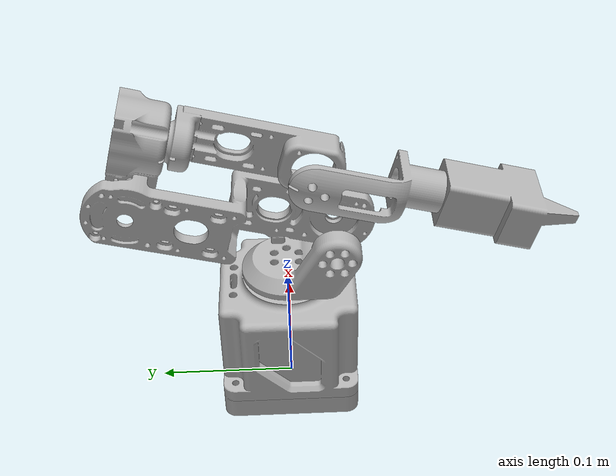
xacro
<?xml version="1.0" ?>
<robot name="Dummy_ros2_gripper" xmlns:xacro="http://www.ros.org/wiki/xacro">

<xacro:include filename="$(find Dummy_ros2_gripper_description)/urdf/materials.xacro" />
<xacro:include filename="$(find Dummy_ros2_gripper_description)/urdf/Dummy_ros2_gripper.ros2control" />
<xacro:include filename="$(find Dummy_ros2_gripper_description)/urdf/Dummy_ros2_gripper.gazebo" />
<link name="base_link">
  <inertial>
    <origin xyz="-0.001009481727884451 -0.003019429069803383 0.05160790941398075" rpy="0 0 0"/>
    <mass value="2.718238266585044"/>
    <inertia ixx="0.005512" iyy="0.005791" izz="0.005729" ixy="0.0" iyz="7.1e-05" ixz="-0.0"/>
  </inertial>
  <visual>
    <origin xyz="0 0 0" rpy="0 0 0"/>
    <geometry>
      <mesh filename="file://$(find Dummy_ros2_gripper_description)/meshes/base_link.stl" scale="0.001 0.001 0.001"/>
    </geometry>
    <material name="silver"/>
  </visual>
  <collision>
    <origin xyz="0 0 0" rpy="0 0 0"/>
    <geometry>
      <mesh filename="file://$(find Dummy_ros2_gripper_description)/meshes/base_link.stl" scale="0.001 0.001 0.001"/>
    </geometry>
  </collision>
</link>

<link name="link1_1">
  <inertial>
    <origin xyz="-0.009839780406126897 -0.00966552204239397 0.016366716441056375" rpy="0 0 0"/>
    <mass value="0.4166171534635443"/>
    <inertia ixx="0.00024" iyy="0.000197" izz="0.000294" ixy="-7.9e-05" iyz="7e-05" ixz="4.5e-05"/>
  </inertial>
  <visual>
    <origin xyz="0.001009 -0.000448 -0.101002" rpy="0 0 0"/>
    <geometry>
      <mesh filename="file://$(find Dummy_ros2_gripper_description)/meshes/link1_1.stl" scale="0.001 0.001 0.001"/>
    </geometry>
    <material name="silver"/>
  </visual>
  <collision>
    <origin xyz="0.001009 -0.000448 -0.101002" rpy="0 0 0"/>
    <geometry>
      <mesh filename="file://$(find Dummy_ros2_gripper_description)/meshes/link1_1.stl" scale="0.001 0.001 0.001"/>
    </geometry>
  </collision>
</link>

<link name="link2_1">
  <inertial>
    <origin xyz="0.014851271850090091 0.07161200657051364 0.019499831647555255" rpy="0 0 0"/>
    <mass value="0.5967451782931964"/>
    <inertia ixx="0.001809" iyy="0.000464" izz="0.001782" ixy="0.000482" iyz="-0.000402" ixz="0.000132"/>
  </inertial>
  <visual>
    <origin xyz="0.016009 0.034552 -0.138002" rpy="0 0 0"/>
    <geometry>
      <mesh filename="file://$(find Dummy_ros2_gripper_description)/meshes/link2_1.stl" scale="0.001 0.001 0.001"/>
    </geometry>
    <material name="silver"/>
  </visual>
  <collision>
    <origin xyz="0.016009 0.034552 -0.138002" rpy="0 0 0"/>
    <geometry>
      <mesh filename="file://$(find Dummy_ros2_gripper_description)/meshes/link2_1.stl" scale="0.001 0.001 0.001"/>
    </geometry>
  </collision>
</link>

<link name="link3_1">
  <inertial>
    <origin xyz="0.026432291905972044 -0.009358523960295156 0.03150945534865757" rpy="0 0 0"/>
    <mass value="0.3344393811335131"/>
    <inertia ixx="0.000242" iyy="0.000284" izz="0.000136" ixy="-2.2e-05" iyz="4.9e-05" ixz="7.2e-05"/>
  </inertial>
  <visual>
    <origin xyz="0.016009 -0.106473 -0.17579" rpy="0 0 0"/>
    <geometry>
      <mesh filename="file://$(find Dummy_ros2_gripper_description)/meshes/link3_1.stl" scale="0.001 0.001 0.001"/>
    </geometry>
    <material name="silver"/>
  </visual>
  <collision>
    <origin xyz="0.016009 -0.106473 -0.17579" rpy="0 0 0"/>
    <geometry>
      <mesh filename="file://$(find Dummy_ros2_gripper_description)/meshes/link3_1.stl" scale="0.001 0.001 0.001"/>
    </geometry>
  </collision>
</link>

<link name="link4_1">
  <inertial>
    <origin xyz="0.005974212541155054 -0.07248765522637245 -0.019422559111093335" rpy="0 0 0"/>
    <mass value="0.31747632117795543"/>
    <inertia ixx="0.000517" iyy="9.2e-05" izz="0.00047" ixy="1.9e-05" iyz="-0.000109" ixz="5e-06"/>
  </inertial>
  <visual>
    <origin xyz="0.001009 -0.10364 -0.228865" rpy="0 0 0"/>
    <geometry>
      <mesh filename="file://$(find Dummy_ros2_gripper_description)/meshes/link4_1.stl" scale="0.001 0.001 0.001"/>
    </geometry>
    <material name="silver"/>
  </visual>
  <collision>
    <origin xyz="0.001009 -0.10364 -0.228865" rpy="0 0 0"/>
    <geometry>
      <mesh filename="file://$(find Dummy_ros2_gripper_description)/meshes/link4_1.stl" scale="0.001 0.001 0.001"/>
    </geometry>
  </collision>
</link>

<link name="link5_1">
  <inertial>
    <origin xyz="-0.012061711906931349 -0.051326022217209014 -0.013752468414118507" rpy="0 0 0"/>
    <mass value="0.2884450908603479"/>
    <inertia ixx="0.000296" iyy="9.1e-05" izz="0.000306" ixy="8.2e-05" iyz="-6.2e-05" ixz="2.2e-05"/>
  </inertial>
  <visual>
    <origin xyz="-0.002391 0.019999 -0.195736" rpy="0 0 0"/>
    <geometry>
      <mesh filename="file://$(find Dummy_ros2_gripper_description)/meshes/link5_1.stl" scale="0.001 0.001 0.001"/>
    </geometry>
    <material name="silver"/>
  </visual>
  <collision>
    <origin xyz="-0.002391 0.019999 -0.195736" rpy="0 0 0"/>
    <geometry>
      <mesh filename="file://$(find Dummy_ros2_gripper_description)/meshes/link5_1.stl" scale="0.001 0.001 0.001"/>
    </geometry>
  </collision>
</link>

<link name="link6_1">
  <inertial>
    <origin xyz="0.0008821674821817629 -0.03783025207133872 -0.011050499950902626" rpy="0 0 0"/>
    <mass value="0.8224493120140923"/>
    <inertia ixx="0.000472" iyy="0.000222" izz="0.000489" ixy="-0.0" iyz="-7.7e-05" ixz="-0.0"/>
  </inertial>
  <visual>
    <origin xyz="0.001009 0.106879 -0.172457" rpy="0 0 0"/>
    <geometry>
      <mesh filename="file://$(find Dummy_ros2_gripper_description)/meshes/link6_1.stl" scale="0.001 0.001 0.001"/>
    </geometry>
    <material name="silver"/>
  </visual>
  <collision>
    <origin xyz="0.001009 0.106879 -0.172457" rpy="0 0 0"/>
    <geometry>
      <mesh filename="file://$(find Dummy_ros2_gripper_description)/meshes/link6_1.stl" scale="0.001 0.001 0.001"/>
    </geometry>
  </collision>
</link>

<joint name="Revolute 10" type="continuous">
  <origin xyz="-0.001009 0.000448 0.101002" rpy="0 0 0"/>
  <parent link="base_link"/>
  <child link="link1_1"/>
  <axis xyz="0.0 0.0 1.0"/>
</joint>

<joint name="Revolute 11" type="continuous">
  <origin xyz="-0.015 -0.035 0.037" rpy="0 0 0"/>
  <parent link="link1_1"/>
  <child link="link2_1"/>
  <axis xyz="1.0 -0.0 -0.0"/>
</joint>

<joint name="Revolute 12" type="continuous">
  <origin xyz="0.0 0.141025 0.037788" rpy="0 0 0"/>
  <parent link="link2_1"/>
  <child link="link3_1"/>
  <axis xyz="-1.0 0.0 0.0"/>
</joint>

<joint name="Revolute 13" type="continuous">
  <origin xyz="0.015 -0.002833 0.053075" rpy="0 0 0"/>
  <parent link="link3_1"/>
  <child link="link4_1"/>
  <axis xyz="0.0 0.965926 0.258819"/>
</joint>

<joint name="Revolute 14" type="continuous">
  <origin xyz="0.0034 -0.123639 -0.033129" rpy="0 0 0"/>
  <parent link="link4_1"/>
  <child link="link5_1"/>
  <axis xyz="-1.0 0.0 -0.0"/>
</joint>

<joint name="Revolute 15" type="continuous">
  <origin xyz="-0.0034 -0.08688 -0.023279" rpy="0 0 0"/>
  <parent link="link5_1"/>
  <child link="link6_1"/>
  <axis xyz="0.0 -0.965926 -0.258819"/>
</joint>

</robot>

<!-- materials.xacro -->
<robot name="Dummy_ros2_gripper" xmlns:xacro="http://www.ros.org/wiki/xacro" >

<material name="silver">
  <color rgba="0.700 0.700 0.700 1.000"/>
</material>

</robot>

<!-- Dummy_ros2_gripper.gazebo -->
<robot name="Dummy_ros2_gripper" xmlns:xacro="http://www.ros.org/wiki/xacro" >

<xacro:property name="body_color" value="Gazebo/Silver" />

<gazebo reference="base_link">
  <material>${body_color}</material>
  <mu1>0.2</mu1>
  <mu2>0.2</mu2>
  <self_collide>true</self_collide>
  <gravity>true</gravity>
</gazebo>

<gazebo reference="link1_1">
  <material>${body_color}</material>
  <mu1>0.2</mu1>
  <mu2>0.2</mu2>
  <self_collide>true</self_collide>
</gazebo>

<gazebo reference="link2_1">
  <material>${body_color}</material>
  <mu1>0.2</mu1>
  <mu2>0.2</mu2>
  <self_collide>true</self_collide>
</gazebo>

<gazebo reference="link3_1">
  <material>${body_color}</material>
  <mu1>0.2</mu1>
  <mu2>0.2</mu2>
  <self_collide>true</self_collide>
</gazebo>

<gazebo reference="link4_1">
  <material>${body_color}</material>
  <mu1>0.2</mu1>
  <mu2>0.2</mu2>
  <self_collide>true</self_collide>
</gazebo>

<gazebo reference="link5_1">
  <material>${body_color}</material>
  <mu1>0.2</mu1>
  <mu2>0.2</mu2>
  <self_collide>true</self_collide>
</gazebo>

<gazebo reference="link6_1">
  <material>${body_color}</material>
  <mu1>0.2</mu1>
  <mu2>0.2</mu2>
  <self_collide>true</self_collide>
</gazebo>

</robot>
